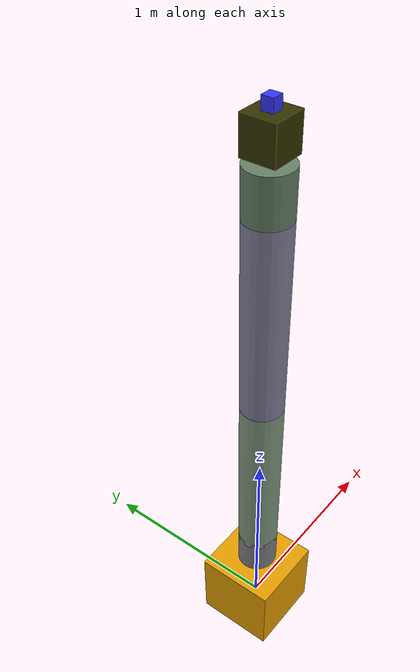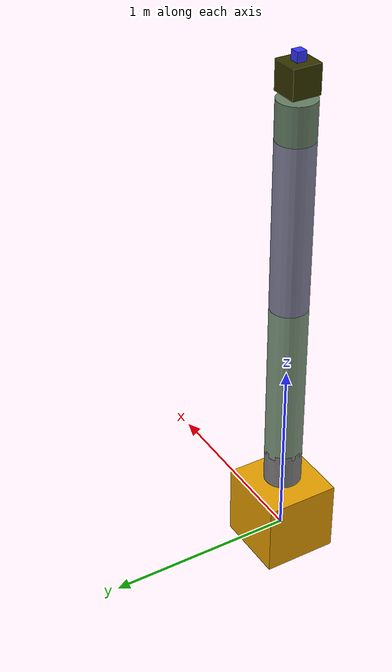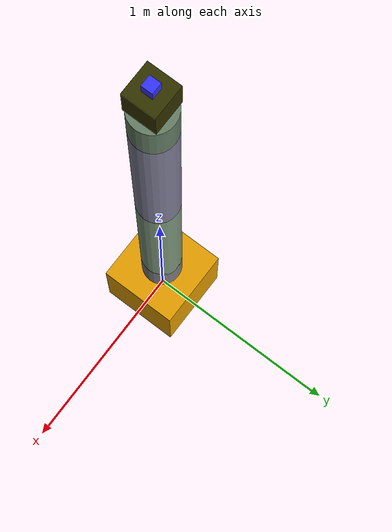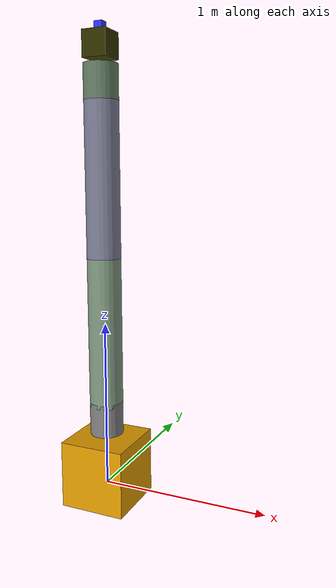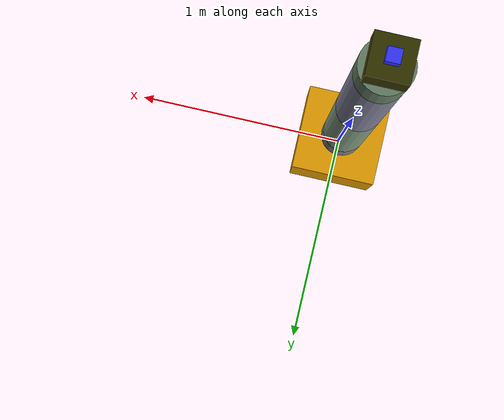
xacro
<?xml version="1.0"?>
<robot xmlns:xacro="http://www.ros.org/wiki/xacro"  name="robot">

    <link name="base">
  		<visual>
          <origin xyz="0 0 0.1" rpy="0 0 0"/>
  			<geometry>
          		<box size=".4 .4 .4"/>
        	</geometry>
  		</visual>
    </link>

    <link name="l1">
        <visual>
          	<origin xyz="0 0 .125" rpy="0 0 0"/>
            <geometry>
                <cylinder length=".20" radius="0.1" />
            </geometry>
            <material name="red">
                <color rgba=".5 .5 .5 1.0"/>
            </material>
        </visual>
    </link>

	<link name="l2">
        <visual>
          	<origin xyz="0 0 .45" rpy="0 0 0"/>
            <geometry>
                <cylinder length=".9" radius="0.1" />
            </geometry>
            <material name="redd">
                <color rgba=".5 .6 .5 1.0"/>
            </material>
        </visual>
    </link>

	<link name="l3">
        <visual>
          	<origin xyz="0 0 .45" rpy="0 0 0"/>
            <geometry>
                <cylinder length=".9" radius="0.1" />
            </geometry>
            <material name="redd">
                <color rgba=".5 .5 .6 1.0"/>
            </material>
        </visual>
    </link>

	<link name="l4">
        <visual>
          	<origin xyz="0 0 .1" rpy="0 0 0"/>
            <geometry>
                <cylinder length=".2" radius="0.1" />
            </geometry>
          <material name="rd">
                <color rgba=".4 .5 .4 1.0"/>
            </material>
        </visual>
    </link>

	<link name="hand">
        <visual>
          	<origin xyz="0 0 .1" rpy="0 0 0"/>
            <geometry>
                <box size = ".15 .15 .15" />
            </geometry>
          	<material name="rfd">
                <color rgba=".2 .2 0 1.0"/>
            </material>
        </visual>
    </link>

    <link name="finger">
        <visual>
          	<origin xyz="0 0 0" rpy="0 0 0"/>
            <geometry>
                <box size = ".05 .05 .05" />
            </geometry>
          	<material name="rfdd">
                <color rgba=".2 .2 1 1.0"/>
            </material>
        </visual>
    </link>

    <joint name="base_to_l1" type="revolute">
        <parent link="base" />
        <child link="l1" />
        <origin  rpy="0 0 0" xyz="0 0 .3" />
      	<axis rpy= "0 0 0" xyz= "0 0 1"/>
        <limit effort = "10" velocity = "3.1" lower="-3.7" upper="3.7"/>

    </joint>

 	<joint name="l1_to_l2" type="revolute">
        <parent link="l1" />
        <child link="l2" />
        <origin  rpy="0 0 0" xyz="0 0 .20" />
      	<axis rpy= "0 0 0" xyz= "0 1 0"/>
        <limit effort = "10" velocity = "3.1" lower="-.5" upper="1.5"/>

    </joint>

 	<joint name="l2_to_l3" type="revolute">
        <parent link="l2" />
        <child link="l3" />
        <origin  rpy="0 0 0" xyz="0 0 .9" />
      	<axis rpy= "0 0 0" xyz= "0 1 0"/>
        <limit effort = "10" velocity = "3.1" lower="-.5" upper="1.5"/>

    </joint>

	<joint name="l3_to_l4" type="revolute">
        <parent link="l3" />
        <child link="l4" />
        <origin  rpy="0 0 0" xyz="0 0 .9" />
      	<axis rpy= "0 0 0" xyz= "0 1 0"/>
        <limit effort = "10" velocity = "3.1" lower="0" upper="2"/>

    </joint>

	<joint name="l4_to_hand" type="revolute">
        <parent link="l4" />
        <child link="hand" />
        <origin  rpy="0 0 0" xyz="0 0 .2" />
      	<axis rpy= "0 0 0" xyz= "0 0 1"/>
        <limit effort = "10" velocity = "3.1" lower="-3.7" upper="3.7"/>

    </joint>

    <joint name="hand_to_finger" type="fixed">
        <parent link="hand" />
        <child link="finger" />
        <origin  rpy="0 0 0" xyz="0 0 .2" />
      	<axis rpy= "0 0 0" xyz= "0 0 1"/>

    </joint>

</robot>
